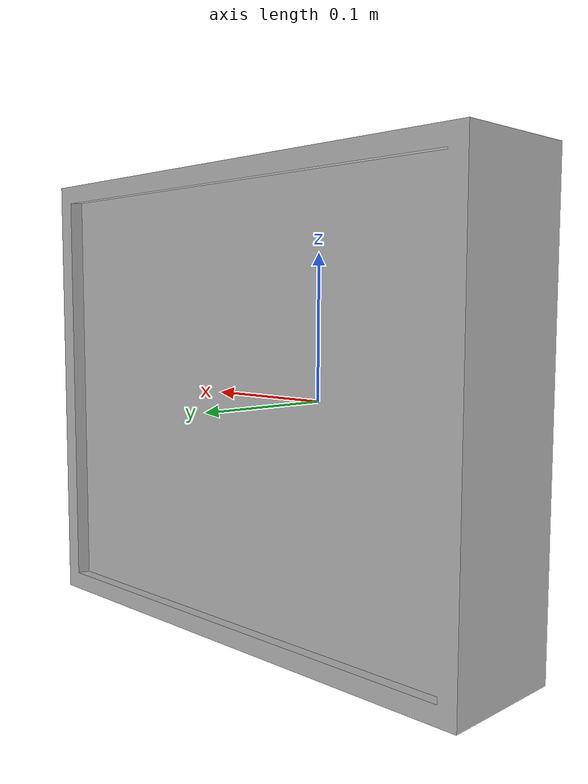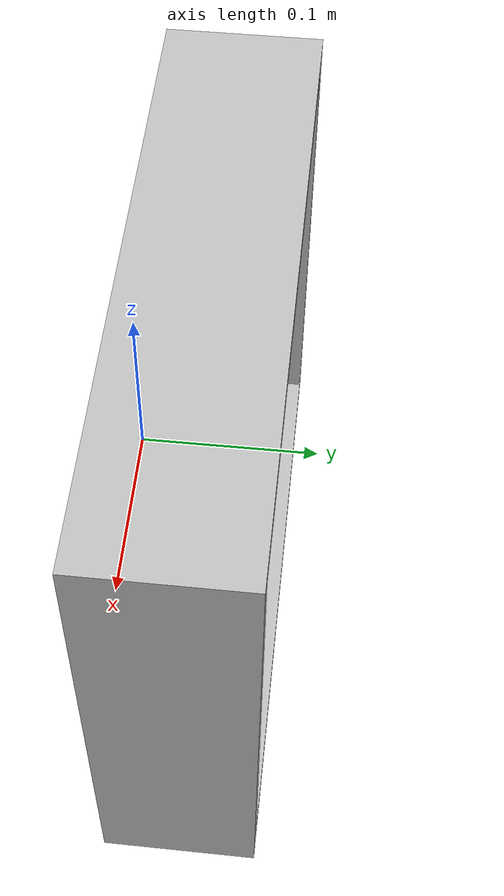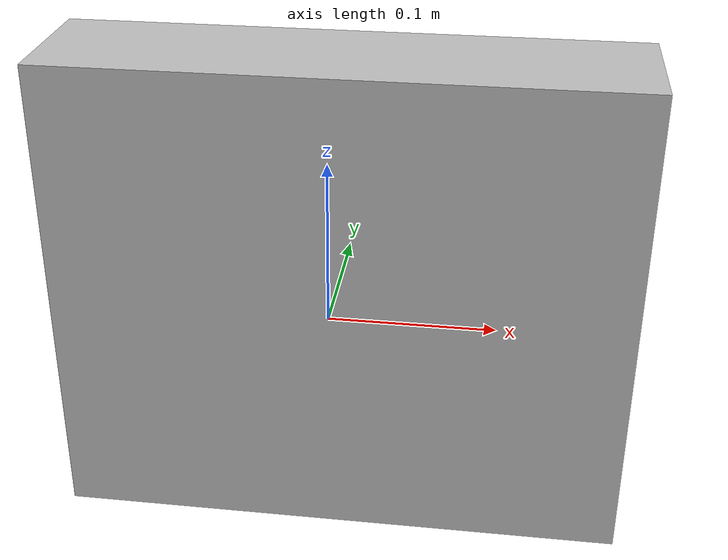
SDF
<?xml version="1.0" ?>
<sdf version="1.4">
  <model name="shelf1_box1_5a">
    <link name="body">
      <pose>0 0 0 0 0 0</pose>
      <inertial>
        <pose>   0.005000   0.038821   0.000950 0 0 0</pose>
        <mass>0.5</mass>
        <inertia>
          <ixx>0.01</ixx>
          <ixy>0</ixy>
          <ixz>0</ixz>
          <iyy>0.01</iyy>
          <iyz>0</iyz>
          <izz>0.01</izz>
        </inertia>
      </inertial>
      <collision name="collision">
        <geometry>
          <mesh>
            <uri>model://bookshelf/shelf1_items/box1_5a/box1_5a.dae</uri>
          </mesh>
        </geometry>
      </collision>
      <visual name="visual">
        <geometry>
          <mesh>
            <uri>model://bookshelf/shelf1_items/box1_5a/box1_5a.dae</uri>
          </mesh>
        </geometry>
      </visual>
    </link>
  </model>
</sdf>
